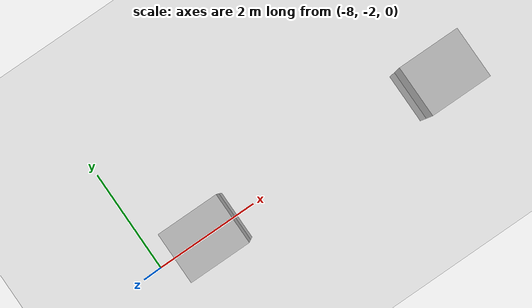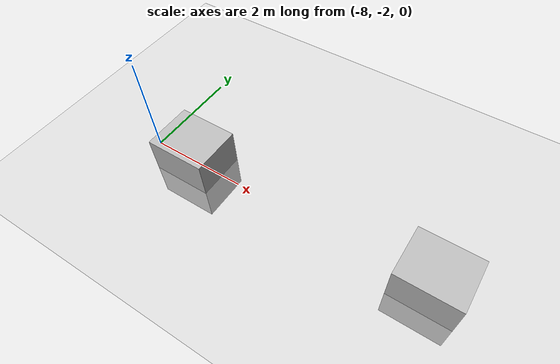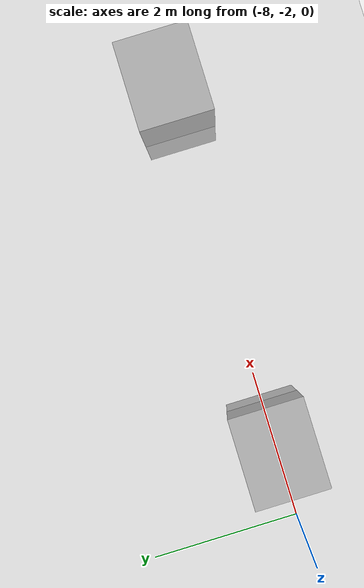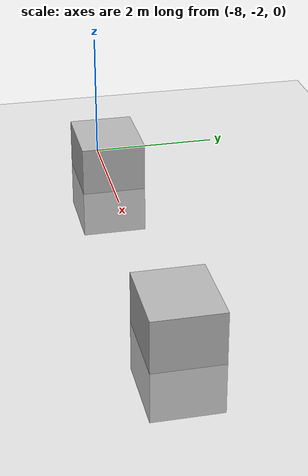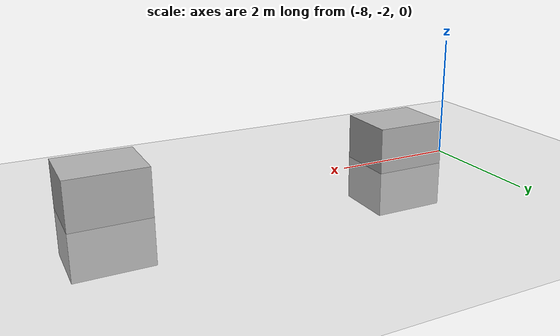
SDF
<?xml version="1.0" ?>
<sdf version="1.5">
  <world name="default">
    <gui>
      <camera name="user_camera">
        <pose>-2.0 0.0 3.0 0.0 0.8 0.0</pose>
      </camera>
    </gui>
    <include>
      <scale>3.0</scale>
      <uri>model://ground_plane</uri>
    </include>
    <include>
      <scale>3.0</scale>
      <uri>model://asphalt_plane</uri>
    </include>
    <include>
      <uri>model://sun</uri>
    </include>

    <include>
      <scale>1.0</scale>
      <uri>model://big_box</uri>
      <name>big_box_0</name>
      <pose>-7.0 -2.0 0.0 0 0 0</pose>
    </include>

    <include>
      <scale>1.0</scale>
      <uri>model://big_box</uri>
      <name>big_box_1</name>
      <pose>-2.0 -2.0 0.0 0 0 0</pose>
    </include>
  </world>
</sdf>

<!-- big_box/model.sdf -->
<sdf version="1.5">
  <model name="Big box">
    <pose>0 0 0.05 0 0 0</pose>
    <static>false</static>
    <link name="link">
      <inertial>
        <mass>0.026</mass>
        <inertia>
          <ixx>1.664e-5</ixx>
          <iyy>1.664e-5</iyy>
          <izz>1.664e-5</izz>
          <ixy>0</ixy>
          <ixz>0</ixz>
          <iyz>0</iyz>
        </inertia>
      </inertial>

      <collision name="collision">
        <geometry>
          <mesh>
            <uri>model://big_box/meshes/big_box.dae</uri>
          </mesh>
        </geometry>
      </collision>
      <visual name="visual">
        <geometry>
          <mesh>
            <uri>model://big_box/meshes/big_box.dae</uri>
          </mesh>
        </geometry>
      </visual>
    </link>
  </model>
</sdf>
